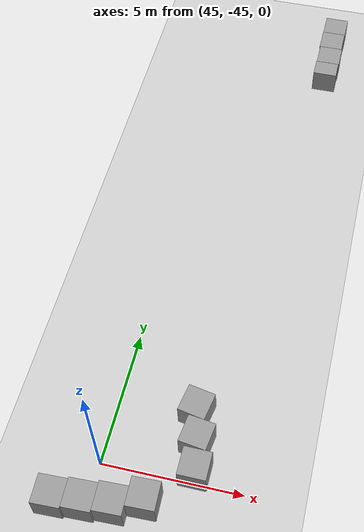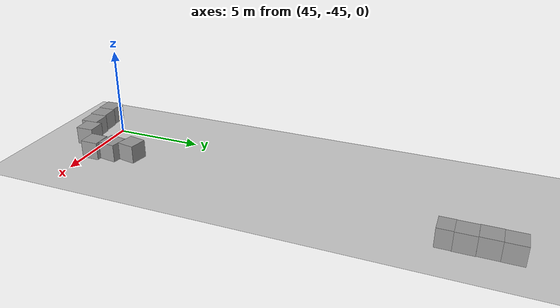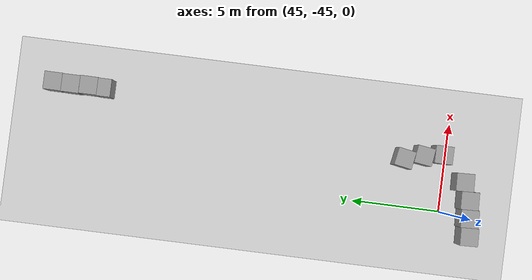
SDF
<sdf version="1.7">
 <world name="default">
  <model name="ground_plane">
   <static>1</static>
   <link name="link">
    <collision name="collision">
     <geometry><plane><normal>0 0 1</normal><size>100 100</size></plane></geometry>
     <surface>
      <contact><collide_bitmask>65535</collide_bitmask></contact>
      <friction><ode><mu>100</mu><mu2>50</mu2></ode></friction>
     </surface>
    </collision>
    <visual name="visual">
     <cast_shadows>0</cast_shadows>
     <geometry><plane><normal>0 0 1</normal><size>100 100</size></plane></geometry>
     <material>
      <script><uri>file://media/materials/scripts/gazebo.material</uri><name>Gazebo/Grey</name></script>
     </material>
    </visual>
   </link>
  </model>
  <model name="unit_box_31">
   <pose>46.8394 -45.9795 0.499995 -1e-05 -0 0.032244</pose>
   <link name="link">
    <inertial>
     <mass>1</mass>
     <inertia>
      <ixx>0.166667</ixx>
      <ixy>0</ixy>
      <ixz>0</ixz>
      <iyy>0.166667</iyy>
      <iyz>0</iyz>
      <izz>0.166667</izz>
     </inertia>
    </inertial>
    <collision name="collision"><geometry><box><size>1 1 1</size></box></geometry></collision>
    <visual name="visual">
     <geometry><box><size>1 1 1</size></box></geometry>
     <material>
      <script><name>Gazebo/Grey</name><uri>file://media/materials/scripts/gazebo.material</uri></script>
     </material>
    </visual>
   </link>
  </model>
  <model name="unit_box_32">
   <pose>45.851 -46.3579 0.499995 1e-05 0 0.032297</pose>
   <link name="link">
    <inertial>
     <mass>1</mass>
     <inertia>
      <ixx>0.166667</ixx>
      <ixy>0</ixy>
      <ixz>0</ixz>
      <iyy>0.166667</iyy>
      <iyz>0</iyz>
      <izz>0.166667</izz>
     </inertia>
    </inertial>
    <collision name="collision"><geometry><box><size>1 1 1</size></box></geometry></collision>
    <visual name="visual">
     <geometry><box><size>1 1 1</size></box></geometry>
     <material>
      <script><name>Gazebo/Grey</name><uri>file://media/materials/scripts/gazebo.material</uri></script>
     </material>
    </visual>
   </link>
  </model>
  <model name="unit_box_33">
   <pose>44.8539 -46.4684 0.499995 -1e-05 -0 0.032145</pose>
   <link name="link">
    <inertial>
     <mass>1</mass>
     <inertia>
      <ixx>0.166667</ixx>
      <ixy>0</ixy>
      <ixz>0</ixz>
      <iyy>0.166667</iyy>
      <iyz>0</iyz>
      <izz>0.166667</izz>
     </inertia>
    </inertial>
    <collision name="collision"><geometry><box><size>1 1 1</size></box></geometry></collision>
    <visual name="visual">
     <geometry><box><size>1 1 1</size></box></geometry>
     <material>
      <script><name>Gazebo/Grey</name><uri>file://media/materials/scripts/gazebo.material</uri></script>
     </material>
    </visual>
   </link>
  </model>
  <model name="unit_box_34">
   <pose>43.8563 -46.5607 0.499995 0 -1e-05 0.032085</pose>
   <link name="link">
    <inertial>
     <mass>1</mass>
     <inertia>
      <ixx>0.166667</ixx>
      <ixy>0</ixy>
      <ixz>0</ixz>
      <iyy>0.166667</iyy>
      <iyz>0</iyz>
      <izz>0.166667</izz>
     </inertia>
    </inertial>
    <collision name="collision"><geometry><box><size>1 1 1</size></box></geometry></collision>
    <visual name="visual">
     <geometry><box><size>1 1 1</size></box></geometry>
     <material>
      <script><name>Gazebo/Grey</name><uri>file://media/materials/scripts/gazebo.material</uri></script>
     </material>
    </visual>
   </link>
  </model>
  <model name="unit_box_38">
   <pose>49.5909 -22.4936 0.499995 -1e-05 -0 -0.001789</pose>
   <link name="link">
    <inertial>
     <mass>1</mass>
     <inertia>
      <ixx>0.166667</ixx>
      <ixy>0</ixy>
      <ixz>0</ixz>
      <iyy>0.166667</iyy>
      <iyz>0</iyz>
      <izz>0.166667</izz>
     </inertia>
    </inertial>
    <collision name="collision"><geometry><box><size>1 1 1</size></box></geometry></collision>
    <visual name="visual">
     <geometry><box><size>1 1 1</size></box></geometry>
     <material>
      <script><name>Gazebo/Grey</name><uri>file://media/materials/scripts/gazebo.material</uri></script>
     </material>
    </visual>
   </link>
  </model>
  <model name="unit_box_39">
   <pose>49.5773 -23.494 0.499995 -0 1e-05 -0.001139</pose>
   <link name="link">
    <inertial>
     <mass>1</mass>
     <inertia>
      <ixx>0.166667</ixx>
      <ixy>0</ixy>
      <ixz>0</ixz>
      <iyy>0.166667</iyy>
      <iyz>0</iyz>
      <izz>0.166667</izz>
     </inertia>
    </inertial>
    <collision name="collision"><geometry><box><size>1 1 1</size></box></geometry></collision>
    <visual name="visual">
     <geometry><box><size>1 1 1</size></box></geometry>
     <material>
      <script><name>Gazebo/Grey</name><uri>file://media/materials/scripts/gazebo.material</uri></script>
     </material>
    </visual>
   </link>
  </model>
  <model name="unit_box_43">
   <pose>47.7627 -42.4983 0.499995 0 -1e-05 -0.180262</pose>
   <link name="link">
    <inertial>
     <mass>1</mass>
     <inertia>
      <ixx>0.166667</ixx>
      <ixy>0</ixy>
      <ixz>0</ixz>
      <iyy>0.166667</iyy>
      <iyz>0</iyz>
      <izz>0.166667</izz>
     </inertia>
    </inertial>
    <collision name="collision"><geometry><box><size>1 1 1</size></box></geometry></collision>
    <visual name="visual">
     <geometry><box><size>1 1 1</size></box></geometry>
     <material>
      <script><name>Gazebo/Grey</name><uri>file://media/materials/scripts/gazebo.material</uri></script>
     </material>
    </visual>
   </link>
  </model>
  <model name="unit_box_44">
   <pose>48.0361 -43.5669 0.5 0 0 -0.137756</pose>
   <link name="link">
    <inertial>
     <mass>1</mass>
     <inertia>
      <ixx>0.166667</ixx>
      <ixy>0</ixy>
      <ixz>0</ixz>
      <iyy>0.166667</iyy>
      <iyz>0</iyz>
      <izz>0.166667</izz>
     </inertia>
    </inertial>
    <collision name="collision"><geometry><box><size>1 1 1</size></box></geometry></collision>
    <visual name="visual">
     <geometry><box><size>1 1 1</size></box></geometry>
     <material>
      <script><name>Gazebo/Grey</name><uri>file://media/materials/scripts/gazebo.material</uri></script>
     </material>
    </visual>
   </link>
  </model>
  <model name="unit_box_45">
   <pose>48.2132 -44.6302 0.499995 1e-05 0 -0.002713</pose>
   <link name="link">
    <inertial>
     <mass>1</mass>
     <inertia>
      <ixx>0.166667</ixx>
      <ixy>0</ixy>
      <ixz>0</ixz>
      <iyy>0.166667</iyy>
      <iyz>0</iyz>
      <izz>0.166667</izz>
     </inertia>
    </inertial>
    <collision name="collision"><geometry><box><size>1 1 1</size></box></geometry></collision>
    <visual name="visual">
     <geometry><box><size>1 1 1</size></box></geometry>
     <material>
      <script><name>Gazebo/Grey</name><uri>file://media/materials/scripts/gazebo.material</uri></script>
     </material>
    </visual>
   </link>
  </model>
  <model name="unit_box_40">
   <pose>49.6001 -24.495 0.499995 1e-05 0 -0.000304</pose>
   <link name="link">
    <inertial>
     <mass>1</mass>
     <inertia>
      <ixx>0.166667</ixx>
      <ixy>0</ixy>
      <ixz>0</ixz>
      <iyy>0.166667</iyy>
      <iyz>0</iyz>
      <izz>0.166667</izz>
     </inertia>
    </inertial>
    <collision name="collision"><geometry><box><size>1 1 1</size></box></geometry></collision>
    <visual name="visual">
     <geometry><box><size>1 1 1</size></box></geometry>
     <material>
      <script><name>Gazebo/Grey</name><uri>file://media/materials/scripts/gazebo.material</uri></script>
     </material>
    </visual>
   </link>
  </model>
  <model name="unit_box_41">
   <pose>49.5785 -25.3795 0.499995 0 -1e-05 -0.000103</pose>
   <link name="link">
    <inertial>
     <mass>1</mass>
     <inertia>
      <ixx>0.166667</ixx>
      <ixy>0</ixy>
      <ixz>0</ixz>
      <iyy>0.166667</iyy>
      <iyz>0</iyz>
      <izz>0.166667</izz>
     </inertia>
    </inertial>
    <collision name="collision"><geometry><box><size>1 0.7685 1</size></box></geometry></collision>
    <visual name="visual">
     <geometry><box><size>1 0.7685 1</size></box></geometry>
     <material>
      <script><name>Gazebo/Grey</name><uri>file://media/materials/scripts/gazebo.material</uri></script>
     </material>
    </visual>
   </link>
  </model>
 </world>
</sdf>
